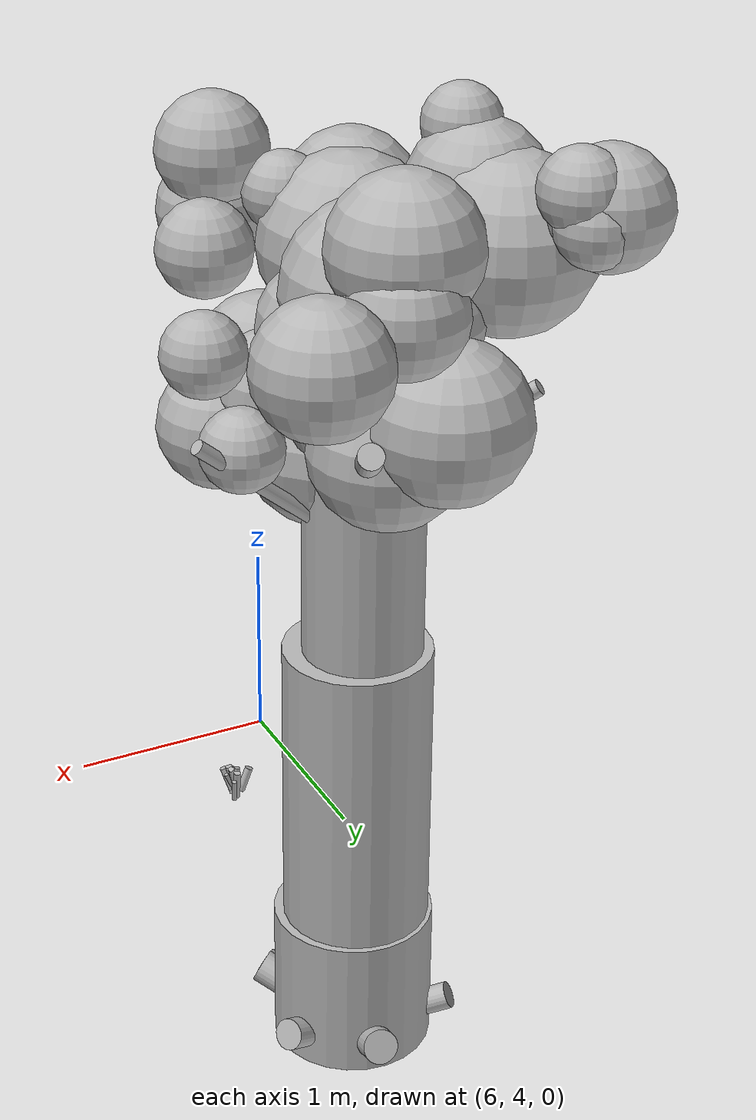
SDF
<sdf version="1.6">
 <world name="default">
  <model name="tree_6">
   <static>true</static>
   <pose>6.6540 6.4140 0 0 0 0</pose>
   <link name="trunk">
    <pose>0 0 1.5000 0 0 0</pose>
    <collision name="trunk_c">
     <geometry><cylinder><radius>0.3500</radius><length>3.0000</length></cylinder></geometry>
    </collision>
   </link>
   <link name="trunk_v0">
    <pose>-0.0015 0.0010 0.3100 0 0 0</pose>
    <visual name="trunk_v0_v">
     <geometry><cylinder><radius>0.3448</radius><length>0.6448</length></cylinder></geometry>
     <material>
      <script>
       <uri>model://bushfire/materials/scripts</uri>
       <uri>model://bushfire/materials/textures</uri>
       <name>Bushfire/CharBark</name>
      </script>
     </material>
    </visual>
   </link>
   <link name="trunk_v1">
    <pose>-0.0106 0.0072 1.2700 0 0 0</pose>
    <visual name="trunk_v1_v">
     <geometry><cylinder><radius>0.3150</radius><length>1.3520</length></cylinder></geometry>
     <material>
      <script>
       <uri>model://bushfire/materials/scripts</uri>
       <uri>model://bushfire/materials/textures</uri>
       <name>Bushfire/BarkStringy</name>
      </script>
     </material>
    </visual>
   </link>
   <link name="trunk_v2">
    <pose>-0.0266 0.0182 2.4600 0 0 0</pose>
    <visual name="trunk_v2_v">
     <geometry><cylinder><radius>0.2520</radius><length>1.1232</length></cylinder></geometry>
     <material>
      <script>
       <uri>model://bushfire/materials/scripts</uri>
       <uri>model://bushfire/materials/textures</uri>
       <name>Bushfire/BarkStringy</name>
      </script>
     </material>
    </visual>
   </link>
   <link name="root0">
    <pose>0.1478 -0.1891 0.09 0 1.150 5.376</pose>
    <visual name="root0_v">
     <geometry><cylinder><radius>0.0601</radius><length>0.4200</length></cylinder></geometry>
     <material>
      <script>
       <uri>model://bushfire/materials/scripts</uri>
       <uri>model://bushfire/materials/textures</uri>
       <name>Bushfire/CharBark</name>
      </script>
     </material>
    </visual>
   </link>
   <link name="root1">
    <pose>0.2188 0.0986 0.09 0 1.150 0.423</pose>
    <visual name="root1_v">
     <geometry><cylinder><radius>0.0682</radius><length>0.4200</length></cylinder></geometry>
     <material>
      <script>
       <uri>model://bushfire/materials/scripts</uri>
       <uri>model://bushfire/materials/textures</uri>
       <name>Bushfire/CharBark</name>
      </script>
     </material>
    </visual>
   </link>
   <link name="root2">
    <pose>0.1641 -0.1751 0.09 0 1.150 5.465</pose>
    <visual name="root2_v">
     <geometry><cylinder><radius>0.0745</radius><length>0.4200</length></cylinder></geometry>
     <material>
      <script>
       <uri>model://bushfire/materials/scripts</uri>
       <uri>model://bushfire/materials/textures</uri>
       <name>Bushfire/CharBark</name>
      </script>
     </material>
    </visual>
   </link>
   <link name="root3">
    <pose>0.0395 0.2367 0.09 0 1.150 1.405</pose>
    <visual name="root3_v">
     <geometry><cylinder><radius>0.0767</radius><length>0.4200</length></cylinder></geometry>
     <material>
      <script>
       <uri>model://bushfire/materials/scripts</uri>
       <uri>model://bushfire/materials/textures</uri>
       <name>Bushfire/CharBark</name>
      </script>
     </material>
    </visual>
   </link>
   <link name="root4">
    <pose>-0.2012 0.1309 0.09 0 1.150 2.565</pose>
    <visual name="root4_v">
     <geometry><cylinder><radius>0.0593</radius><length>0.4200</length></cylinder></geometry>
     <material>
      <script>
       <uri>model://bushfire/materials/scripts</uri>
       <uri>model://bushfire/materials/textures</uri>
       <name>Bushfire/CharBark</name>
      </script>
     </material>
    </visual>
   </link>
   <link name="branch0">
    <pose>-0.2994 0.1874 2.8997 0 0.9473 2.5822</pose>
    <visual name="branch0_v">
     <geometry><cylinder><radius>0.0344</radius><length>0.8701</length></cylinder></geometry>
     <material>
      <script>
       <uri>model://bushfire/materials/scripts</uri>
       <uri>model://bushfire/materials/textures</uri>
       <name>Bushfire/BarkStringy</name>
      </script>
     </material>
    </visual>
   </link>
   <link name="branch1">
    <pose>-0.2273 -0.0175 3.0521 0 0.7767 3.2185</pose>
    <visual name="branch1_v">
     <geometry><cylinder><radius>0.0330</radius><length>0.6505</length></cylinder></geometry>
     <material>
      <script>
       <uri>model://bushfire/materials/scripts</uri>
       <uri>model://bushfire/materials/textures</uri>
       <name>Bushfire/BarkStringy</name>
      </script>
     </material>
    </visual>
   </link>
   <link name="branch2">
    <pose>-0.0918 -0.3019 2.6348 0 0.9490 4.4173</pose>
    <visual name="branch2_v">
     <geometry><cylinder><radius>0.0456</radius><length>0.7764</length></cylinder></geometry>
     <material>
      <script>
       <uri>model://bushfire/materials/scripts</uri>
       <uri>model://bushfire/materials/textures</uri>
       <name>Bushfire/BarkStringy</name>
      </script>
     </material>
    </visual>
   </link>
   <link name="branch3">
    <pose>0.1815 -0.2080 2.7509 0 0.8379 5.4297</pose>
    <visual name="branch3_v">
     <geometry><cylinder><radius>0.0365</radius><length>0.7429</length></cylinder></geometry>
     <material>
      <script>
       <uri>model://bushfire/materials/scripts</uri>
       <uri>model://bushfire/materials/textures</uri>
       <name>Bushfire/BarkStringy</name>
      </script>
     </material>
    </visual>
   </link>
   <link name="branch4">
    <pose>0.3453 0.0131 2.7228 0 0.8661 6.3210</pose>
    <visual name="branch4_v">
     <geometry><cylinder><radius>0.0320</radius><length>0.9071</length></cylinder></geometry>
     <material>
      <script>
       <uri>model://bushfire/materials/scripts</uri>
       <uri>model://bushfire/materials/textures</uri>
       <name>Bushfire/BarkStringy</name>
      </script>
     </material>
    </visual>
   </link>
   <link name="branch5">
    <pose>0.1448 0.3485 2.9051 0 0.9197 7.4601</pose>
    <visual name="branch5_v">
     <geometry><cylinder><radius>0.0517</radius><length>0.9489</length></cylinder></geometry>
     <material>
      <script>
       <uri>model://bushfire/materials/scripts</uri>
       <uri>model://bushfire/materials/textures</uri>
       <name>Bushfire/BarkStringy</name>
      </script>
     </material>
    </visual>
   </link>
   <link name="foliage0">
    <pose>-0.4466 0.1102 3.8904 0 0 0</pose>
    <visual name="foliage0_v">
     <geometry><sphere><radius>0.2871</radius></sphere></geometry>
     <material>
      <script>
       <uri>model://bushfire/materials/scripts</uri>
       <uri>model://bushfire/materials/textures</uri>
       <name>Bushfire/Foliage1</name>
      </script>
     </material>
    </visual>
   </link>
   <link name="foliage1">
    <pose>0.0396 0.2280 3.6139 0 0 0</pose>
    <visual name="foliage1_v">
     <geometry><sphere><radius>0.3702</radius></sphere></geometry>
     <material>
      <script>
       <uri>model://bushfire/materials/scripts</uri>
       <uri>model://bushfire/materials/textures</uri>
       <name>Bushfire/Foliage2</name>
      </script>
     </material>
    </visual>
   </link>
   <link name="foliage2">
    <pose>0.1745 0.0774 3.4362 0 0 0</pose>
    <visual name="foliage2_v">
     <geometry><sphere><radius>0.2700</radius></sphere></geometry>
     <material>
      <script>
       <uri>model://bushfire/materials/scripts</uri>
       <uri>model://bushfire/materials/textures</uri>
       <name>Bushfire/Foliage1</name>
      </script>
     </material>
    </visual>
   </link>
   <link name="foliage3">
    <pose>0.4045 -0.3952 2.8705 0 0 0</pose>
    <visual name="foliage3_v">
     <geometry><sphere><radius>0.2645</radius></sphere></geometry>
     <material>
      <script>
       <uri>model://bushfire/materials/scripts</uri>
       <uri>model://bushfire/materials/textures</uri>
       <name>Bushfire/Foliage0</name>
      </script>
     </material>
    </visual>
   </link>
   <link name="foliage4">
    <pose>0.1751 0.1916 3.1363 0 0 0</pose>
    <visual name="foliage4_v">
     <geometry><sphere><radius>0.2096</radius></sphere></geometry>
     <material>
      <script>
       <uri>model://bushfire/materials/scripts</uri>
       <uri>model://bushfire/materials/textures</uri>
       <name>Bushfire/Foliage2</name>
      </script>
     </material>
    </visual>
   </link>
   <link name="foliage5">
    <pose>0.0883 0.5480 3.9033 0 0 0</pose>
    <visual name="foliage5_v">
     <geometry><sphere><radius>0.2979</radius></sphere></geometry>
     <material>
      <script>
       <uri>model://bushfire/materials/scripts</uri>
       <uri>model://bushfire/materials/textures</uri>
       <name>Bushfire/Foliage0</name>
      </script>
     </material>
    </visual>
   </link>
   <link name="foliage6">
    <pose>-0.6905 0.6558 3.9666 0 0 0</pose>
    <visual name="foliage6_v">
     <geometry><sphere><radius>0.2413</radius></sphere></geometry>
     <material>
      <script>
       <uri>model://bushfire/materials/scripts</uri>
       <uri>model://bushfire/materials/textures</uri>
       <name>Bushfire/Foliage2</name>
      </script>
     </material>
    </visual>
   </link>
   <link name="foliage7">
    <pose>-0.1081 -0.1978 3.5356 0 0 0</pose>
    <visual name="foliage7_v">
     <geometry><sphere><radius>0.2368</radius></sphere></geometry>
     <material>
      <script>
       <uri>model://bushfire/materials/scripts</uri>
       <uri>model://bushfire/materials/textures</uri>
       <name>Bushfire/Foliage2</name>
      </script>
     </material>
    </visual>
   </link>
   <link name="foliage8">
    <pose>0.2303 -0.2574 3.0518 0 0 0</pose>
    <visual name="foliage8_v">
     <geometry><sphere><radius>0.2503</radius></sphere></geometry>
     <material>
      <script>
       <uri>model://bushfire/materials/scripts</uri>
       <uri>model://bushfire/materials/textures</uri>
       <name>Bushfire/Foliage0</name>
      </script>
     </material>
    </visual>
   </link>
   <link name="foliage9">
    <pose>0.2803 -0.7363 3.6456 0 0 0</pose>
    <visual name="foliage9_v">
     <geometry><sphere><radius>0.2250</radius></sphere></geometry>
     <material>
      <script>
       <uri>model://bushfire/materials/scripts</uri>
       <uri>model://bushfire/materials/textures</uri>
       <name>Bushfire/Foliage0</name>
      </script>
     </material>
    </visual>
   </link>
   <link name="foliage10">
    <pose>0.0062 -0.1232 3.2449 0 0 0</pose>
    <visual name="foliage10_v">
     <geometry><sphere><radius>0.1967</radius></sphere></geometry>
     <material>
      <script>
       <uri>model://bushfire/materials/scripts</uri>
       <uri>model://bushfire/materials/textures</uri>
       <name>Bushfire/Foliage0</name>
      </script>
     </material>
    </visual>
   </link>
   <link name="foliage11">
    <pose>0.0299 0.2698 3.5853 0 0 0</pose>
    <visual name="foliage11_v">
     <geometry><sphere><radius>0.1534</radius></sphere></geometry>
     <material>
      <script>
       <uri>model://bushfire/materials/scripts</uri>
       <uri>model://bushfire/materials/textures</uri>
       <name>Bushfire/Foliage1</name>
      </script>
     </material>
    </visual>
   </link>
   <link name="foliage12">
    <pose>0.0589 0.3861 3.0357 0 0 0</pose>
    <visual name="foliage12_v">
     <geometry><sphere><radius>0.3189</radius></sphere></geometry>
     <material>
      <script>
       <uri>model://bushfire/materials/scripts</uri>
       <uri>model://bushfire/materials/textures</uri>
       <name>Bushfire/Foliage0</name>
      </script>
     </material>
    </visual>
   </link>
   <link name="foliage13">
    <pose>-0.1031 -0.2876 3.6000 0 0 0</pose>
    <visual name="foliage13_v">
     <geometry><sphere><radius>0.3687</radius></sphere></geometry>
     <material>
      <script>
       <uri>model://bushfire/materials/scripts</uri>
       <uri>model://bushfire/materials/textures</uri>
       <name>Bushfire/Foliage0</name>
      </script>
     </material>
    </visual>
   </link>
   <link name="foliage14">
    <pose>0.0513 -0.1948 2.7951 0 0 0</pose>
    <visual name="foliage14_v">
     <geometry><sphere><radius>0.3302</radius></sphere></geometry>
     <material>
      <script>
       <uri>model://bushfire/materials/scripts</uri>
       <uri>model://bushfire/materials/textures</uri>
       <name>Bushfire/Foliage1</name>
      </script>
     </material>
    </visual>
   </link>
   <link name="foliage15">
    <pose>0.2939 -0.6907 3.9083 0 0 0</pose>
    <visual name="foliage15_v">
     <geometry><sphere><radius>0.2299</radius></sphere></geometry>
     <material>
      <script>
       <uri>model://bushfire/materials/scripts</uri>
       <uri>model://bushfire/materials/textures</uri>
       <name>Bushfire/Foliage0</name>
      </script>
     </material>
    </visual>
   </link>
   <link name="foliage16">
    <pose>0.7712 0.3045 3.5300 0 0 0</pose>
    <visual name="foliage16_v">
     <geometry><sphere><radius>0.1635</radius></sphere></geometry>
     <material>
      <script>
       <uri>model://bushfire/materials/scripts</uri>
       <uri>model://bushfire/materials/textures</uri>
       <name>Bushfire/Foliage1</name>
      </script>
     </material>
    </visual>
   </link>
   <link name="foliage17">
    <pose>0.5585 0.8481 3.6544 0 0 0</pose>
    <visual name="foliage17_v">
     <geometry><sphere><radius>0.2625</radius></sphere></geometry>
     <material>
      <script>
       <uri>model://bushfire/materials/scripts</uri>
       <uri>model://bushfire/materials/textures</uri>
       <name>Bushfire/Foliage0</name>
      </script>
     </material>
    </visual>
   </link>
   <link name="foliage18">
    <pose>-0.0989 0.3296 3.5089 0 0 0</pose>
    <visual name="foliage18_v">
     <geometry><sphere><radius>0.2473</radius></sphere></geometry>
     <material>
      <script>
       <uri>model://bushfire/materials/scripts</uri>
       <uri>model://bushfire/materials/textures</uri>
       <name>Bushfire/Foliage1</name>
      </script>
     </material>
    </visual>
   </link>
   <link name="foliage19">
    <pose>-0.4308 0.0013 4.1192 0 0 0</pose>
    <visual name="foliage19_v">
     <geometry><sphere><radius>0.1607</radius></sphere></geometry>
     <material>
      <script>
       <uri>model://bushfire/materials/scripts</uri>
       <uri>model://bushfire/materials/textures</uri>
       <name>Bushfire/Foliage2</name>
      </script>
     </material>
    </visual>
   </link>
   <link name="foliage20">
    <pose>-0.1956 -0.4611 3.7084 0 0 0</pose>
    <visual name="foliage20_v">
     <geometry><sphere><radius>0.2822</radius></sphere></geometry>
     <material>
      <script>
       <uri>model://bushfire/materials/scripts</uri>
       <uri>model://bushfire/materials/textures</uri>
       <name>Bushfire/Foliage0</name>
      </script>
     </material>
    </visual>
   </link>
   <link name="foliage21">
    <pose>0.1705 -0.4953 3.0590 0 0 0</pose>
    <visual name="foliage21_v">
     <geometry><sphere><radius>0.2884</radius></sphere></geometry>
     <material>
      <script>
       <uri>model://bushfire/materials/scripts</uri>
       <uri>model://bushfire/materials/textures</uri>
       <name>Bushfire/Foliage1</name>
      </script>
     </material>
    </visual>
   </link>
   <link name="foliage22">
    <pose>0.7472 0.2807 3.9260 0 0 0</pose>
    <visual name="foliage22_v">
     <geometry><sphere><radius>0.1792</radius></sphere></geometry>
     <material>
      <script>
       <uri>model://bushfire/materials/scripts</uri>
       <uri>model://bushfire/materials/textures</uri>
       <name>Bushfire/Foliage1</name>
      </script>
     </material>
    </visual>
   </link>
   <link name="foliage23">
    <pose>-0.0891 0.5862 3.2035 0 0 0</pose>
    <visual name="foliage23_v">
     <geometry><sphere><radius>0.3252</radius></sphere></geometry>
     <material>
      <script>
       <uri>model://bushfire/materials/scripts</uri>
       <uri>model://bushfire/materials/textures</uri>
       <name>Bushfire/Foliage0</name>
      </script>
     </material>
    </visual>
   </link>
   <link name="foliage24">
    <pose>-0.5995 0.7160 3.9360 0 0 0</pose>
    <visual name="foliage24_v">
     <geometry><sphere><radius>0.1656</radius></sphere></geometry>
     <material>
      <script>
       <uri>model://bushfire/materials/scripts</uri>
       <uri>model://bushfire/materials/textures</uri>
       <name>Bushfire/Foliage2</name>
      </script>
     </material>
    </visual>
   </link>
   <link name="foliage25">
    <pose>-0.2723 -0.1247 3.1593 0 0 0</pose>
    <visual name="foliage25_v">
     <geometry><sphere><radius>0.1970</radius></sphere></geometry>
     <material>
      <script>
       <uri>model://bushfire/materials/scripts</uri>
       <uri>model://bushfire/materials/textures</uri>
       <name>Bushfire/Foliage1</name>
      </script>
     </material>
    </visual>
   </link>
   <link name="foliage26">
    <pose>-0.2416 -0.2042 3.3092 0 0 0</pose>
    <visual name="foliage26_v">
     <geometry><sphere><radius>0.1675</radius></sphere></geometry>
     <material>
      <script>
       <uri>model://bushfire/materials/scripts</uri>
       <uri>model://bushfire/materials/textures</uri>
       <name>Bushfire/Foliage1</name>
      </script>
     </material>
    </visual>
   </link>
   <link name="foliage27">
    <pose>0.1019 -0.4525 3.7816 0 0 0</pose>
    <visual name="foliage27_v">
     <geometry><sphere><radius>0.1636</radius></sphere></geometry>
     <material>
      <script>
       <uri>model://bushfire/materials/scripts</uri>
       <uri>model://bushfire/materials/textures</uri>
       <name>Bushfire/Foliage0</name>
      </script>
     </material>
    </visual>
   </link>
   <link name="foliage28">
    <pose>0.4632 -0.0647 2.9156 0 0 0</pose>
    <visual name="foliage28_v">
     <geometry><sphere><radius>0.1734</radius></sphere></geometry>
     <material>
      <script>
       <uri>model://bushfire/materials/scripts</uri>
       <uri>model://bushfire/materials/textures</uri>
       <name>Bushfire/Foliage1</name>
      </script>
     </material>
    </visual>
   </link>
   <link name="foliage29">
    <pose>0.1422 0.6571 3.7039 0 0 0</pose>
    <visual name="foliage29_v">
     <geometry><sphere><radius>0.2429</radius></sphere></geometry>
     <material>
      <script>
       <uri>model://bushfire/materials/scripts</uri>
       <uri>model://bushfire/materials/textures</uri>
       <name>Bushfire/Foliage0</name>
      </script>
     </material>
    </visual>
   </link>
   <link name="foliage30">
    <pose>-0.5542 0.6700 4.0608 0 0 0</pose>
    <visual name="foliage30_v">
     <geometry><sphere><radius>0.1671</radius></sphere></geometry>
     <material>
      <script>
       <uri>model://bushfire/materials/scripts</uri>
       <uri>model://bushfire/materials/textures</uri>
       <name>Bushfire/Foliage0</name>
      </script>
     </material>
    </visual>
   </link>
   <link name="foliage31">
    <pose>-0.4829 0.2832 3.7377 0 0 0</pose>
    <visual name="foliage31_v">
     <geometry><sphere><radius>0.3649</radius></sphere></geometry>
     <material>
      <script>
       <uri>model://bushfire/materials/scripts</uri>
       <uri>model://bushfire/materials/textures</uri>
       <name>Bushfire/Foliage1</name>
      </script>
     </material>
    </visual>
   </link>
  </model>
  <model name="tussocks">
   <static>true</static>
   <link name="tuft68_2">
    <pose>6.1143 4.8893 0.0839 0 0.1449 0.5793</pose>
    <visual name="tuft68_2_v">
     <geometry><cylinder><radius>0.0115</radius><length>0.1825</length></cylinder></geometry>
     <material>
      <script>
       <uri>model://bushfire/materials/scripts</uri>
       <uri>model://bushfire/materials/textures</uri>
       <name>Bushfire/Tussock</name>
      </script>
     </material>
    </visual>
   </link>
   <link name="tuft130_0">
    <pose>6.3958 4.5410 0.0778 0 0.3804 0.7676</pose>
    <visual name="tuft130_0_v">
     <geometry><cylinder><radius>0.0152</radius><length>0.1690</length></cylinder></geometry>
     <material>
      <script>
       <uri>model://bushfire/materials/scripts</uri>
       <uri>model://bushfire/materials/textures</uri>
       <name>Bushfire/Tussock</name>
      </script>
     </material>
    </visual>
   </link>
   <link name="tuft130_1">
    <pose>6.4204 4.6036 0.0530 0 0.1300 1.1764</pose>
    <visual name="tuft130_1_v">
     <geometry><cylinder><radius>0.0125</radius><length>0.1152</length></cylinder></geometry>
     <material>
      <script>
       <uri>model://bushfire/materials/scripts</uri>
       <uri>model://bushfire/materials/textures</uri>
       <name>Bushfire/Tussock</name>
      </script>
     </material>
    </visual>
   </link>
   <link name="tuft130_2">
    <pose>6.3892 4.5383 0.0662 0 0.2161 3.2364</pose>
    <visual name="tuft130_2_v">
     <geometry><cylinder><radius>0.0144</radius><length>0.1440</length></cylinder></geometry>
     <material>
      <script>
       <uri>model://bushfire/materials/scripts</uri>
       <uri>model://bushfire/materials/textures</uri>
       <name>Bushfire/Tussock</name>
      </script>
     </material>
    </visual>
   </link>
   <link name="tuft130_3">
    <pose>6.3938 4.5319 0.0639 0 0.2571 4.7686</pose>
    <visual name="tuft130_3_v">
     <geometry><cylinder><radius>0.0182</radius><length>0.1390</length></cylinder></geometry>
     <material>
      <script>
       <uri>model://bushfire/materials/scripts</uri>
       <uri>model://bushfire/materials/textures</uri>
       <name>Bushfire/Foliage2</name>
      </script>
     </material>
    </visual>
   </link>
   <link name="tuft130_4">
    <pose>6.3329 4.5388 0.0596 0 0.3788 3.1403</pose>
    <visual name="tuft130_4_v">
     <geometry><cylinder><radius>0.0200</radius><length>0.1295</length></cylinder></geometry>
     <material>
      <script>
       <uri>model://bushfire/materials/scripts</uri>
       <uri>model://bushfire/materials/textures</uri>
       <name>Bushfire/Tussock</name>
      </script>
     </material>
    </visual>
   </link>
   <link name="tuft130_5">
    <pose>6.4085 4.5356 0.0553 0 0.4036 6.0824</pose>
    <visual name="tuft130_5_v">
     <geometry><cylinder><radius>0.0123</radius><length>0.1202</length></cylinder></geometry>
     <material>
      <script>
       <uri>model://bushfire/materials/scripts</uri>
       <uri>model://bushfire/materials/textures</uri>
       <name>Bushfire/Tussock</name>
      </script>
     </material>
    </visual>
   </link>
   <link name="tuft130_6">
    <pose>6.3982 4.5848 0.0705 0 0.1219 1.4668</pose>
    <visual name="tuft130_6_v">
     <geometry><cylinder><radius>0.0173</radius><length>0.1532</length></cylinder></geometry>
     <material>
      <script>
       <uri>model://bushfire/materials/scripts</uri>
       <uri>model://bushfire/materials/textures</uri>
       <name>Bushfire/Foliage2</name>
      </script>
     </material>
    </visual>
   </link>
   <link name="tuft130_7">
    <pose>6.4136 4.5168 0.0647 0 0.3800 5.4585</pose>
    <visual name="tuft130_7_v">
     <geometry><cylinder><radius>0.0196</radius><length>0.1406</length></cylinder></geometry>
     <material>
      <script>
       <uri>model://bushfire/materials/scripts</uri>
       <uri>model://bushfire/materials/textures</uri>
       <name>Bushfire/Foliage2</name>
      </script>
     </material>
    </visual>
   </link>
   <link name="tuft130_8">
    <pose>6.3985 4.5342 0.0718 0 0.2530 5.5664</pose>
    <visual name="tuft130_8_v">
     <geometry><cylinder><radius>0.0174</radius><length>0.1560</length></cylinder></geometry>
     <material>
      <script>
       <uri>model://bushfire/materials/scripts</uri>
       <uri>model://bushfire/materials/textures</uri>
       <name>Bushfire/Foliage2</name>
      </script>
     </material>
    </visual>
   </link>
  </model>
 </world>
</sdf>
